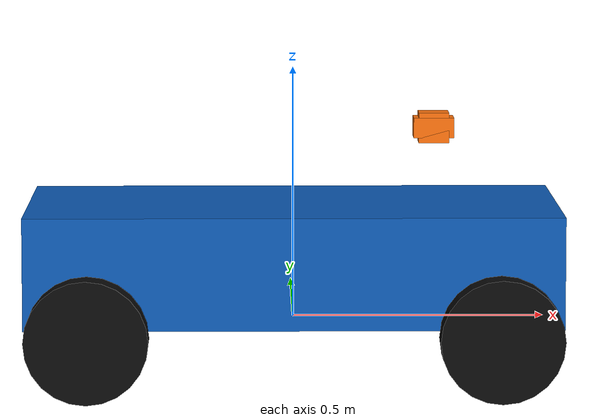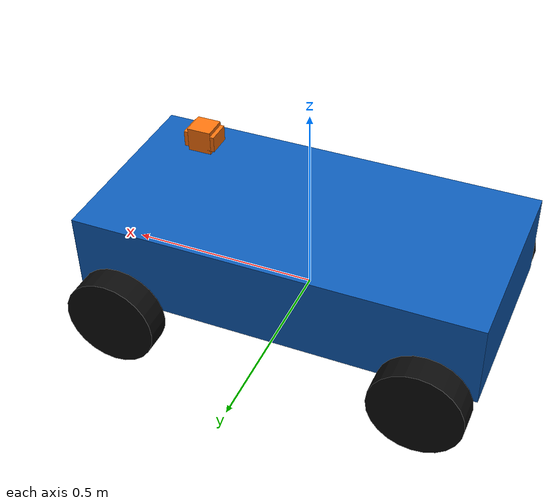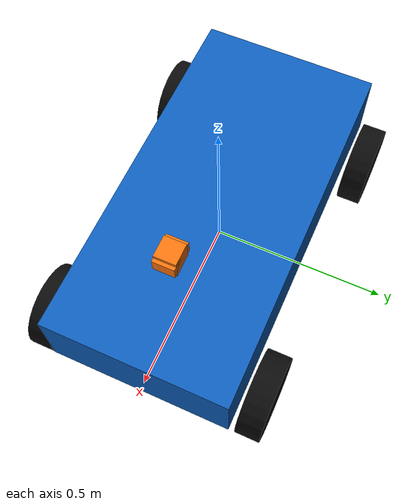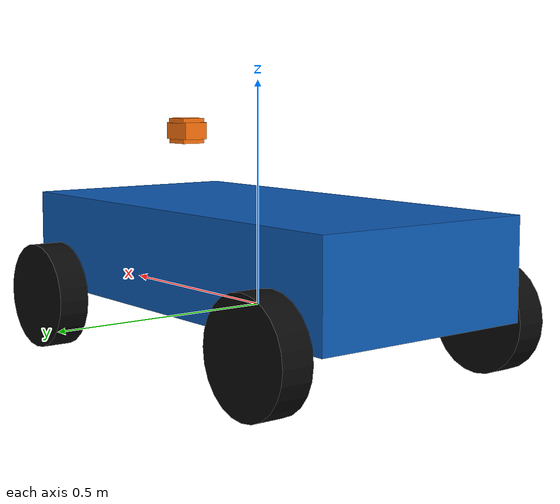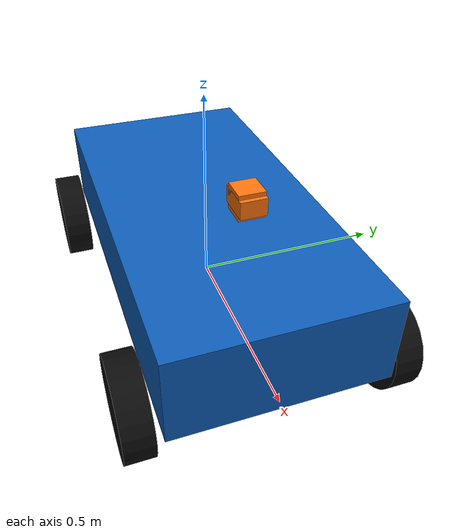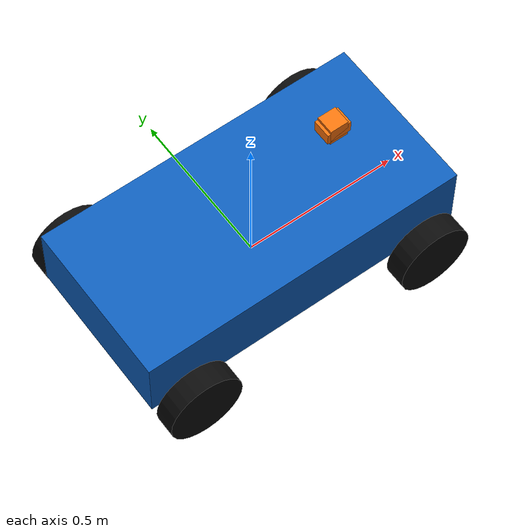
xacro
<?xml version="1.0"?>
<!-- Dimensions: course-kit v1-w06 models/course_ackermann/model.sdf.
     SI units; x forward, y left, z up. No Gazebo plugins. -->
<robot xmlns:xacro="http://www.ros.org/wiki/xacro" name="course_ackermann">
  <xacro:arg name="wheelbase" default="0.8"/>
  <xacro:arg name="track" default="0.62"/>
  <xacro:arg name="wheel_radius" default="0.12"/>
  <xacro:property name="wheelbase" value="$(arg wheelbase)"/>
  <xacro:property name="track" value="$(arg track)"/>
  <xacro:property name="wheel_radius" value="$(arg wheel_radius)"/>
  <xacro:property name="wheel_width" value="0.07"/>
  <material name="body_blue"><color rgba="0.05 0.36 0.72 1"/></material>
  <material name="wheel_black"><color rgba="0.04 0.04 0.04 1"/></material>
  <material name="sensor_orange"><color rgba="1 0.45 0.05 1"/></material>

  <link name="base_link">
    <inertial><mass value="12.0"/><inertia ixx="0.55" iyy="1.10" izz="1.40" ixy="0" ixz="0" iyz="0"/></inertial>
    <visual><origin xyz="0 0 0.12"/><geometry><box size="1.05 0.52 0.22"/></geometry><material name="body_blue"/></visual>
    <collision><origin xyz="0 0 0.12"/><geometry><box size="1.05 0.52 0.22"/></geometry></collision>
  </link>

  <xacro:macro name="wheel" params="name parent x y">
    <link name="${name}_wheel">
      <inertial><mass value="0.8"/>
        <inertia ixx="${0.8*(3*wheel_radius**2+wheel_width**2)/12}" iyy="${0.8*wheel_radius**2/2}"
                 izz="${0.8*(3*wheel_radius**2+wheel_width**2)/12}" ixy="0" ixz="0" iyz="0"/>
      </inertial>
      <visual><origin rpy="${pi/2} 0 0"/><geometry><cylinder radius="${wheel_radius}" length="${wheel_width}"/></geometry><material name="wheel_black"/></visual>
      <collision><origin rpy="${pi/2} 0 0"/><geometry><cylinder radius="${wheel_radius}" length="${wheel_width}"/></geometry></collision>
    </link>
    <joint name="${name}_wheel_joint" type="continuous">
      <parent link="${parent}"/><child link="${name}_wheel"/>
      <origin xyz="${x} ${y} 0"/><axis xyz="0 1 0"/>
    </joint>
  </xacro:macro>

  <xacro:macro name="front" params="side sign">
    <link name="front_${side}_knuckle">
      <inertial><mass value="0.2"/><inertia ixx="0.001" iyy="0.001" izz="0.001" ixy="0" ixz="0" iyz="0"/></inertial>
      <visual><geometry><box size="0.04 0.04 0.04"/></geometry><material name="body_blue"/></visual>
      <collision><geometry><box size="0.04 0.04 0.04"/></geometry></collision>
    </link>
    <joint name="front_${side}_steering_joint" type="revolute">
      <parent link="base_link"/><child link="front_${side}_knuckle"/>
      <origin xyz="${wheelbase/2} ${sign*track/2} 0"/><axis xyz="0 0 1"/>
      <limit lower="-0.55" upper="0.55" effort="25" velocity="1.0"/>
    </joint>
    <xacro:wheel name="front_${side}" parent="front_${side}_knuckle" x="0" y="0"/>
  </xacro:macro>
  <xacro:front side="left" sign="${1}"/>
  <xacro:front side="right" sign="${-1}"/>
  <xacro:wheel name="rear_left" parent="base_link" x="${-wheelbase/2}" y="${track/2}"/>
  <xacro:wheel name="rear_right" parent="base_link" x="${-wheelbase/2}" y="${-track/2}"/>

  <!-- Sensor frames coincide in the supplied SDF; do not invent new offsets. -->
  <xacro:macro name="sensor" params="name size">
    <link name="${name}_link">
      <inertial><mass value="0.033333333333"/><inertia ixx="0.000333333333" iyy="0.000333333333" izz="0.000333333333" ixy="0" ixz="0" iyz="0"/></inertial>
      <visual><geometry><box size="${size}"/></geometry><material name="sensor_orange"/></visual>
      <collision><geometry><box size="${size}"/></geometry></collision>
    </link>
  </xacro:macro>
  <xacro:sensor name="camera" size="0.08 0.06 0.04"/>
  <xacro:sensor name="lidar" size="0.06 0.06 0.06"/>
  <xacro:sensor name="imu" size="0.03 0.03 0.02"/>
  <joint name="camera_joint" type="fixed"><parent link="base_link"/><child link="camera_link"/><origin xyz="0.28 0 0.38"/></joint>
  <joint name="lidar_joint" type="fixed"><parent link="base_link"/><child link="lidar_link"/><origin xyz="0.28 0 0.38"/></joint>
  <joint name="imu_joint" type="fixed"><parent link="base_link"/><child link="imu_link"/><origin xyz="0.28 0 0.38"/></joint>
</robot>
